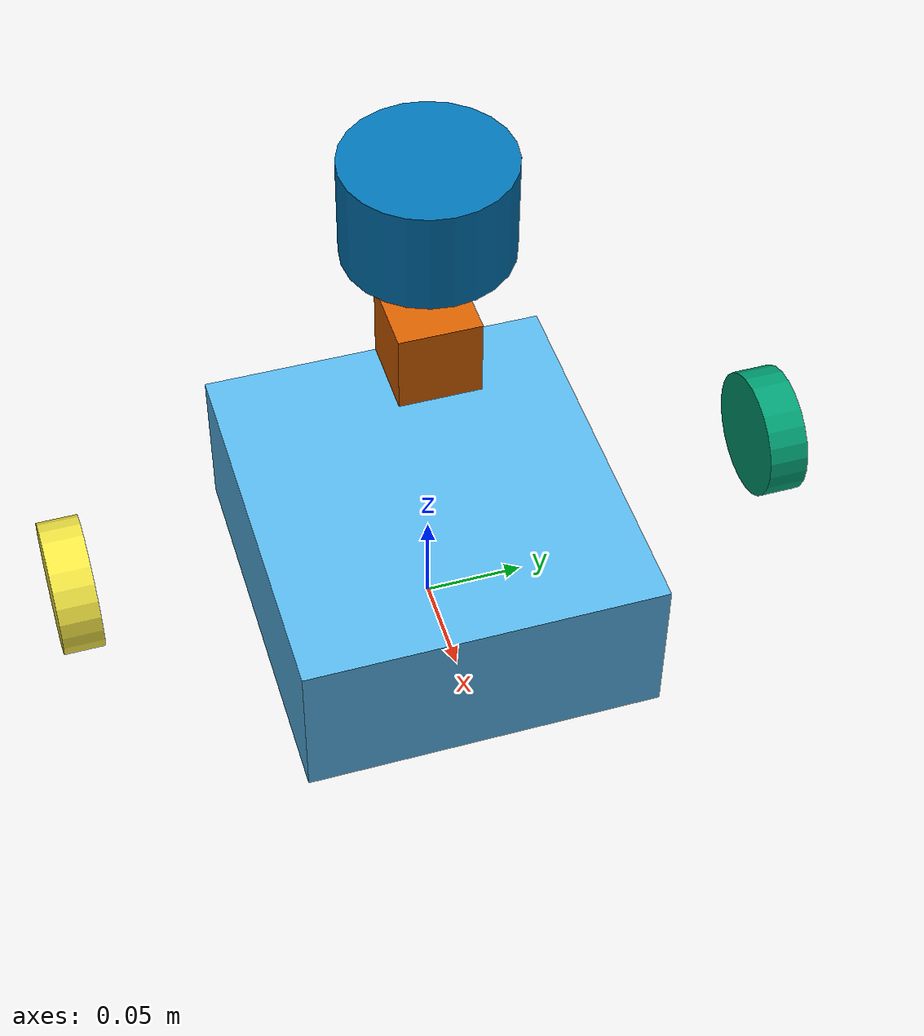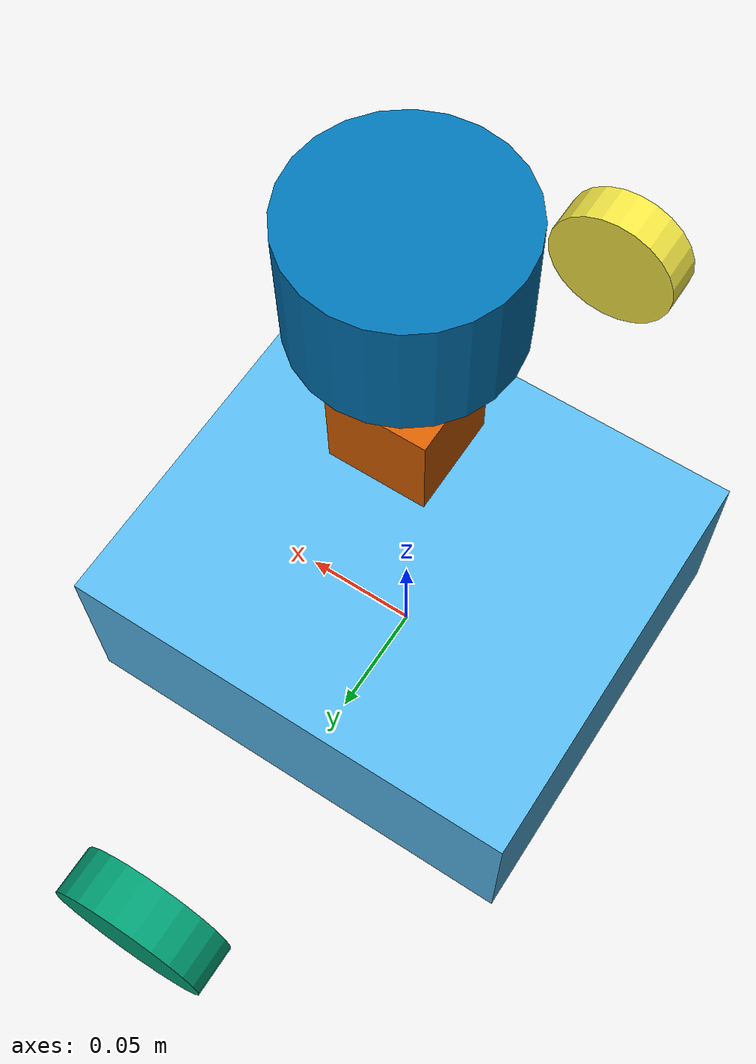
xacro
<?xml version="1.0"?>
<robot name="my_robot" xmlns:xacro="http://www.ros.org/wiki/xacro">

  <!-- Parameters -->
  <xacro:property name="wheel_radius" value="0.0325"/>
  <xacro:property name="wheel_width" value="0.02"/>
  <xacro:property name="wheel_separation" value="0.18"/>
  <xacro:property name="base_length" value="0.20"/>
  <xacro:property name="base_width" value="0.18"/>
  <xacro:property name="base_height" value="0.08"/>

  <!-- Base footprint -->
  <link name="base_footprint"/>

  <!-- Base link -->
  <link name="base_link">
    <visual>
      <geometry>
        <box size="${base_length} ${base_width} ${base_height}"/>
      </geometry>
      <origin xyz="0 0 ${base_height/2}" rpy="0 0 0"/>
    </visual>
  </link>

  <joint name="base_joint" type="fixed">
    <parent link="base_footprint"/>
    <child link="base_link"/>
  </joint>

  <!-- Left Wheel -->
  <link name="left_wheel_link">
    <visual>
      <geometry>
        <cylinder length="${wheel_width}" radius="${wheel_radius}"/>
      </geometry>
      <origin xyz="0 ${wheel_separation/2} ${wheel_radius}" rpy="1.5707 0 0"/>
    </visual>
  </link>

  <joint name="left_wheel_joint" type="fixed">
    <parent link="base_link"/>
    <child link="left_wheel_link"/>
    <origin xyz="0 ${wheel_separation/2} ${wheel_radius}" rpy="0 0 0"/>
    <axis xyz="0 1 0"/>
  </joint>

  <!-- Right Wheel -->
  <link name="right_wheel_link">
    <visual>
      <geometry>
        <cylinder length="${wheel_width}" radius="${wheel_radius}"/>
      </geometry>
      <origin xyz="0 -${wheel_separation/2} ${wheel_radius}" rpy="1.5707 0 0"/>
    </visual>
  </link>

  <joint name="right_wheel_joint" type="fixed">
    <parent link="base_link"/>
    <child link="right_wheel_link"/>
    <origin xyz="0 -${wheel_separation/2} ${wheel_radius}" rpy="0 0 0"/>
    <axis xyz="0 1 0"/>
  </joint>

  <!-- LiDAR -->
  <link name="lidar_link">
    <visual>
      <geometry>
        <cylinder length="0.05" radius="0.04"/>
      </geometry>
      <origin xyz="0 0 ${base_height + 0.05}" rpy="0 0 0"/>
    </visual>
  </link>

  <joint name="lidar_joint" type="fixed">
    <parent link="base_link"/>
    <child link="lidar_link"/>
    <origin xyz="0 0 ${base_height + 0.05}" rpy="0 0 0"/>
  </joint>

  <!-- Camera -->
  <link name="camera_link">
    <visual>
      <geometry>
        <box size="0.04 0.04 0.04"/>
      </geometry>
    </visual>
  </link>

  <joint name="camera_joint" type="fixed">
    <parent link="base_link"/>
    <child link="camera_link"/>
    <origin xyz="0 0 ${base_height + 0.10}" rpy="0 0 0"/>
  </joint>

</robot>
